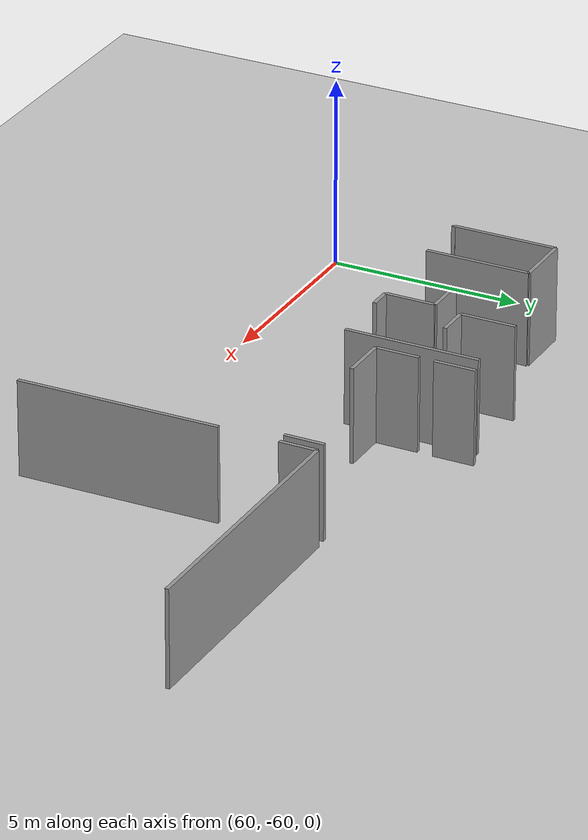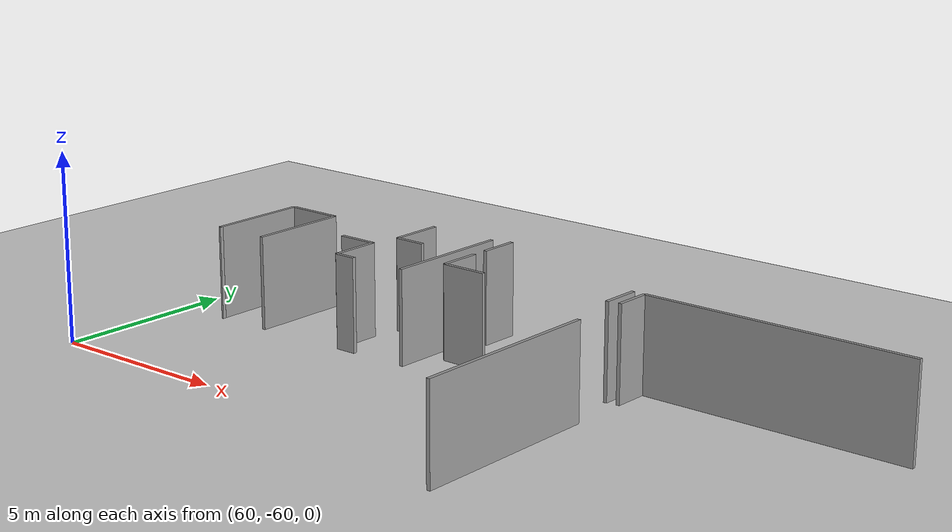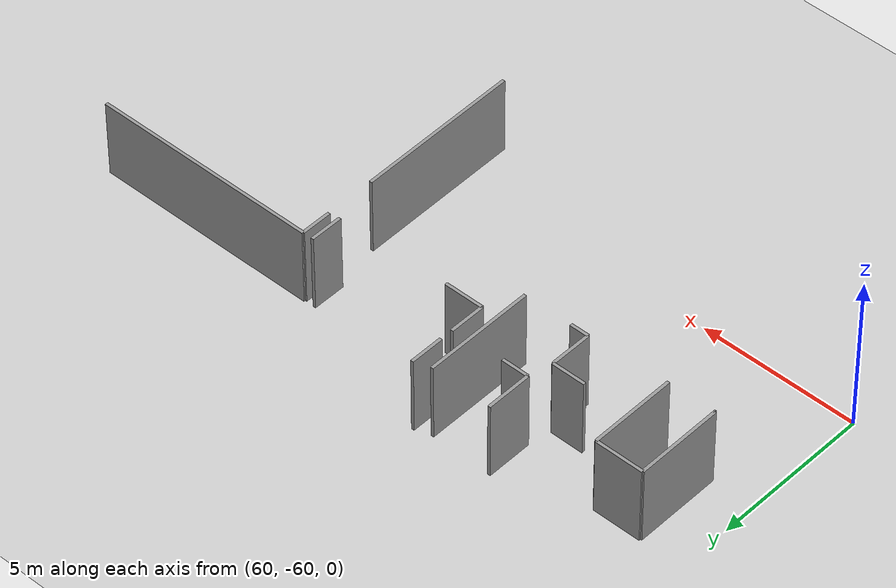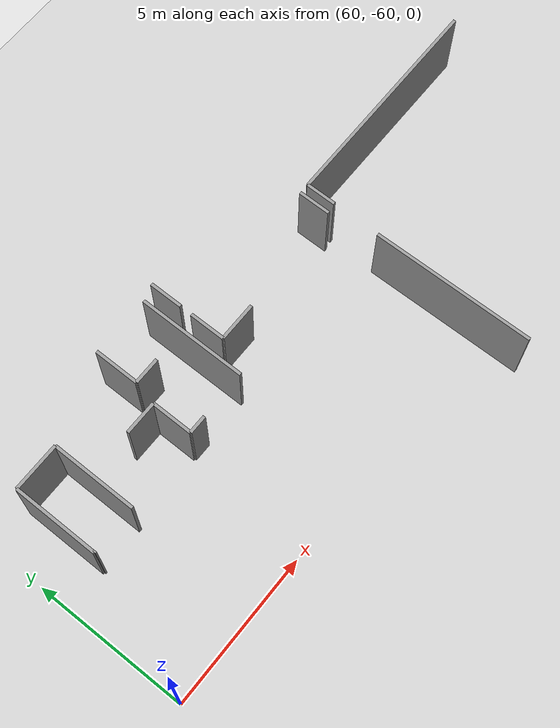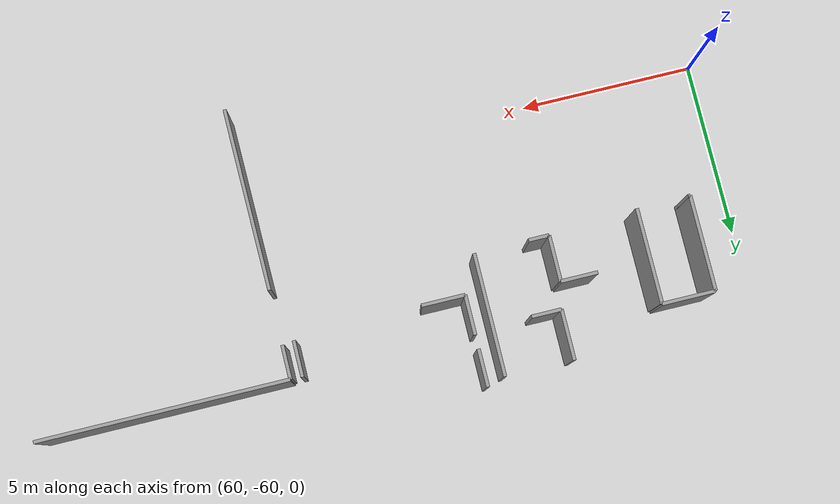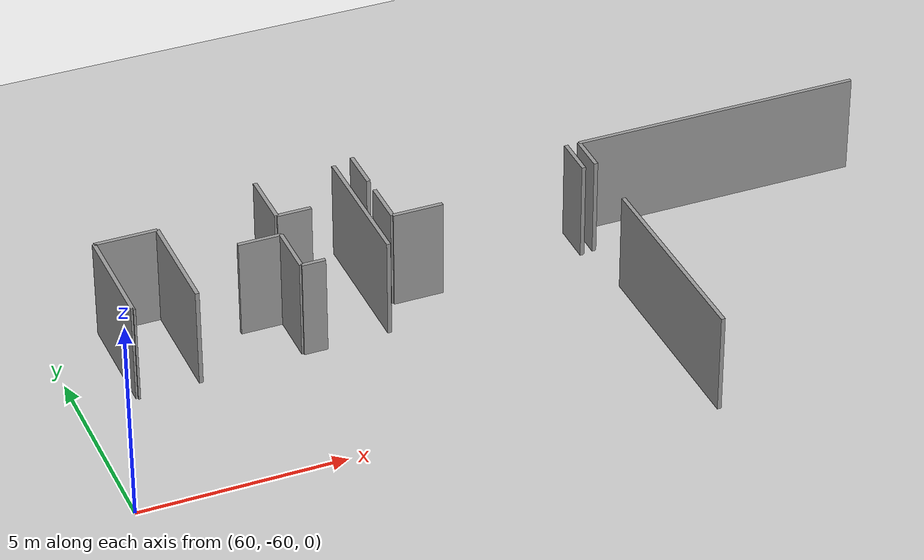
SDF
<sdf version="1.6">
 <world name="default">
  <model name="ground_plane">
   <static>1</static>
   <link name="link">
    <collision name="collision">
     <geometry><plane><normal>0 0 1</normal><size>100 100</size></plane></geometry>
     <surface><friction><ode><mu>100</mu><mu2>50</mu2></ode></friction></surface>
    </collision>
    <visual name="visual">
     <cast_shadows>0</cast_shadows>
     <geometry><plane><normal>0 0 1</normal><size>100 100</size></plane></geometry>
     <material>
      <script><uri>file://media/materials/scripts/gazebo.material</uri><name>Gazebo/Grey</name></script>
     </material>
    </visual>
   </link>
  </model>
  <model name="50023964">
   <static>1</static>
   <link name="Wall_48">
    <collision name="Wall_48_Collision">
     <geometry><box><size>2.73170112096 0.1 2.5</size></box></geometry>
     <pose>1.36585056048 0 1.25 0 0 0</pose>
    </collision>
    <visual name="Wall_48_Visual">
     <pose>1.36585056048 0 1.25 0 0 0</pose>
     <geometry><box><size>2.73170112096 0.1 2.5</size></box></geometry>
     <material>
      <script><uri>file://media/materials/scripts/gazebo.material</uri><name>Gazebo/Grey</name></script>
      <ambient>1 1 1 1</ambient>
     </material>
    </visual>
    <pose>143.644342828 -130.60391858 0 0 0 1.57079632679</pose>
   </link>
   <link name="Wall_49">
    <collision name="Wall_49_Collision">
     <geometry><box><size>1.52602330825 0.1 2.5</size></box></geometry>
     <pose>0.763011654123 0 1.25 0 0 0</pose>
    </collision>
    <visual name="Wall_49_Visual">
     <pose>0.763011654123 0 1.25 0 0 0</pose>
     <geometry><box><size>1.52602330825 0.1 2.5</size></box></geometry>
     <material>
      <script><uri>file://media/materials/scripts/gazebo.material</uri><name>Gazebo/Grey</name></script>
      <ambient>1 1 1 1</ambient>
     </material>
    </visual>
    <pose>143.644342828 -127.872217459 0 0 0 0.0</pose>
   </link>
   <link name="Wall_50">
    <collision name="Wall_50_Collision">
     <geometry><box><size>2.73170112096 0.1 2.5</size></box></geometry>
     <pose>1.36585056048 0 1.25 0 0 0</pose>
    </collision>
    <visual name="Wall_50_Visual">
     <pose>1.36585056048 0 1.25 0 0 0</pose>
     <geometry><box><size>2.73170112096 0.1 2.5</size></box></geometry>
     <material>
      <script><uri>file://media/materials/scripts/gazebo.material</uri><name>Gazebo/Grey</name></script>
      <ambient>1 1 1 1</ambient>
     </material>
    </visual>
    <pose>145.170366136 -127.872217459 0 0 0 -1.57079632679</pose>
   </link>
   <link name="Wall_51">
    <collision name="Wall_51_Collision">
     <geometry><box><size>0.0530945349465 0.1 2.5</size></box></geometry>
     <pose>0.0265472674732 0 1.25 0 0 0</pose>
    </collision>
    <visual name="Wall_51_Visual">
     <pose>0.0265472674732 0 1.25 0 0 0</pose>
     <geometry><box><size>0.0530945349465 0.1 2.5</size></box></geometry>
     <material>
      <script><uri>file://media/materials/scripts/gazebo.material</uri><name>Gazebo/Grey</name></script>
      <ambient>1 1 1 1</ambient>
     </material>
    </visual>
    <pose>143.697437363 -130.60391858 0 0 0 3.14159265359</pose>
   </link>
   <link name="Wall_56">
    <collision name="Wall_56_Collision">
     <geometry><box><size>0.582261598552 0.1 2.5</size></box></geometry>
     <pose>0.291130799276 0 1.25 0 0 0</pose>
    </collision>
    <visual name="Wall_56_Visual">
     <pose>0.291130799276 0 1.25 0 0 0</pose>
     <geometry><box><size>0.582261598552 0.1 2.5</size></box></geometry>
     <material>
      <script><uri>file://media/materials/scripts/gazebo.material</uri><name>Gazebo/Grey</name></script>
      <ambient>1 1 1 1</ambient>
     </material>
    </visual>
    <pose>147.722968467 -130.456066813 0 0 0 0.0</pose>
   </link>
   <link name="Wall_57">
    <collision name="Wall_57_Collision">
     <geometry><box><size>3.49585595885 0.1 2.5</size></box></geometry>
     <pose>1.74792797942 0 1.25 0 0 0</pose>
    </collision>
    <visual name="Wall_57_Visual">
     <pose>1.74792797942 0 1.25 0 0 0</pose>
     <geometry><box><size>3.49585595885 0.1 2.5</size></box></geometry>
     <material>
      <script><uri>file://media/materials/scripts/gazebo.material</uri><name>Gazebo/Grey</name></script>
      <ambient>1 1 1 1</ambient>
     </material>
    </visual>
    <pose>149.856657458 -130.456066813 0 0 0 1.57079632679</pose>
   </link>
   <link name="Wall_60">
    <collision name="Wall_60_Collision">
     <geometry><box><size>0.850020640818 0.1 2.5</size></box></geometry>
     <pose>0.425010320409 0 1.25 0 0 0</pose>
    </collision>
    <visual name="Wall_60_Visual">
     <pose>0.425010320409 0 1.25 0 0 0</pose>
     <geometry><box><size>0.850020640818 0.1 2.5</size></box></geometry>
     <material>
      <script><uri>file://media/materials/scripts/gazebo.material</uri><name>Gazebo/Grey</name></script>
      <ambient>1 1 1 1</ambient>
     </material>
    </visual>
    <pose>148.748785367 -128.383347623 0 0 0 3.14159265359</pose>
   </link>
   <link name="Wall_61">
    <collision name="Wall_61_Collision">
     <geometry><box><size>1.44218983202 0.1 2.5</size></box></geometry>
     <pose>0.721094916008 0 1.25 0 0 0</pose>
    </collision>
    <visual name="Wall_61_Visual">
     <pose>0.721094916008 0 1.25 0 0 0</pose>
     <geometry><box><size>1.44218983202 0.1 2.5</size></box></geometry>
     <material>
      <script><uri>file://media/materials/scripts/gazebo.material</uri><name>Gazebo/Grey</name></script>
      <ambient>1 1 1 1</ambient>
     </material>
    </visual>
    <pose>147.898764726 -128.383347623 0 0 0 1.57079632679</pose>
   </link>
   <link name="Wall_64">
    <collision name="Wall_64_Collision">
     <geometry><box><size>1.06011241307 0.1 2.5</size></box></geometry>
     <pose>0.530056206535 0 1.25 0 0 0</pose>
    </collision>
    <visual name="Wall_64_Visual">
     <pose>0.530056206535 0 1.25 0 0 0</pose>
     <geometry><box><size>1.06011241307 0.1 2.5</size></box></geometry>
     <material>
      <script><uri>file://media/materials/scripts/gazebo.material</uri><name>Gazebo/Grey</name></script>
      <ambient>1 1 1 1</ambient>
     </material>
    </visual>
    <pose>146.666666667 -129.137848909 0 0 0 0.0</pose>
   </link>
   <link name="Wall_65">
    <collision name="Wall_65_Collision">
     <geometry><box><size>1.31822341124 0.1 2.5</size></box></geometry>
     <pose>0.659111705622 0 1.25 0 0 0</pose>
    </collision>
    <visual name="Wall_65_Visual">
     <pose>0.659111705622 0 1.25 0 0 0</pose>
     <geometry><box><size>1.31822341124 0.1 2.5</size></box></geometry>
     <material>
      <script><uri>file://media/materials/scripts/gazebo.material</uri><name>Gazebo/Grey</name></script>
      <ambient>1 1 1 1</ambient>
     </material>
    </visual>
    <pose>147.72677908 -129.137848909 0 0 0 -1.57368704913</pose>
   </link>
   <link name="Wall_71">
    <collision name="Wall_71_Collision">
     <geometry><box><size>1.24530818329 0.1 2.5</size></box></geometry>
     <pose>0.622654091645 0 1.25 0 0 0</pose>
    </collision>
    <visual name="Wall_71_Visual">
     <pose>0.622654091645 0 1.25 0 0 0</pose>
     <geometry><box><size>1.24530818329 0.1 2.5</size></box></geometry>
     <material>
      <script><uri>file://media/materials/scripts/gazebo.material</uri><name>Gazebo/Grey</name></script>
      <ambient>1 1 1 1</ambient>
     </material>
    </visual>
    <pose>151.621987234 -129.39900289 0 0 0 3.14159265359</pose>
   </link>
   <link name="Wall_72">
    <collision name="Wall_72_Collision">
     <geometry><box><size>1.13581658252 0.1 2.5</size></box></geometry>
     <pose>0.567908291258 0 1.25 0 0 0</pose>
    </collision>
    <visual name="Wall_72_Visual">
     <pose>0.567908291258 0 1.25 0 0 0</pose>
     <geometry><box><size>1.13581658252 0.1 2.5</size></box></geometry>
     <material>
      <script><uri>file://media/materials/scripts/gazebo.material</uri><name>Gazebo/Grey</name></script>
      <ambient>1 1 1 1</ambient>
     </material>
    </visual>
    <pose>150.376679051 -129.39900289 0 0 0 1.57079632679</pose>
   </link>
   <link name="Wall_73">
    <collision name="Wall_73_Collision">
     <geometry><box><size>1.03547045188 0.1 2.5</size></box></geometry>
     <pose>0.517735225938 0 1.25 0 0 0</pose>
    </collision>
    <visual name="Wall_73_Visual">
     <pose>0.517735225938 0 1.25 0 0 0</pose>
     <geometry><box><size>1.03547045188 0.1 2.5</size></box></geometry>
     <material>
      <script><uri>file://media/materials/scripts/gazebo.material</uri><name>Gazebo/Grey</name></script>
      <ambient>1 1 1 1</ambient>
     </material>
    </visual>
    <pose>155.254263123 -128.263186307 0 0 0 -1.57079632679</pose>
   </link>
   <link name="Wall_80">
    <collision name="Wall_80_Collision">
     <geometry><box><size>7.20154964911 0.1 2.5</size></box></geometry>
     <pose>3.60077482455 0 1.25 0 0 0</pose>
    </collision>
    <visual name="Wall_80_Visual">
     <pose>3.60077482455 0 1.25 0 0 0</pose>
     <geometry><box><size>7.20154964911 0.1 2.5</size></box></geometry>
     <material>
      <script><uri>file://media/materials/scripts/gazebo.material</uri><name>Gazebo/Grey</name></script>
      <ambient>1 1 1 1</ambient>
     </material>
    </visual>
    <pose>162.789876473 -128.279698962 0 0 0 3.14159265359</pose>
   </link>
   <link name="Wall_81">
    <collision name="Wall_81_Collision">
     <geometry><box><size>0.968911752564 0.1 2.5</size></box></geometry>
     <pose>0.484455876282 0 1.25 0 0 0</pose>
    </collision>
    <visual name="Wall_81_Visual">
     <pose>0.484455876282 0 1.25 0 0 0</pose>
     <geometry><box><size>0.968911752564 0.1 2.5</size></box></geometry>
     <material>
      <script><uri>file://media/materials/scripts/gazebo.material</uri><name>Gazebo/Grey</name></script>
      <ambient>1 1 1 1</ambient>
     </material>
    </visual>
    <pose>155.588326824 -128.279698962 0 0 0 -1.57079632679</pose>
   </link>
   <link name="Wall_82">
    <collision name="Wall_82_Collision">
     <geometry><box><size>5.21961918991 0.1 2.5</size></box></geometry>
     <pose>2.60980959495 0 1.25 0 0 0</pose>
    </collision>
    <visual name="Wall_82_Visual">
     <pose>2.60980959495 0 1.25 0 0 0</pose>
     <geometry><box><size>5.21961918991 0.1 2.5</size></box></geometry>
     <material>
      <script><uri>file://media/materials/scripts/gazebo.material</uri><name>Gazebo/Grey</name></script>
      <ambient>1 1 1 1</ambient>
     </material>
    </visual>
    <pose>155.588326824 -130.809183576 0 0 0 -1.55921251786</pose>
   </link>
   <link name="Wall_98">
    <collision name="Wall_98_Collision">
     <geometry><box><size>1.07357657743 0.1 2.5</size></box></geometry>
     <pose>0.536788288717 0 1.25 0 0 0</pose>
    </collision>
    <visual name="Wall_98_Visual">
     <pose>0.536788288717 0 1.25 0 0 0</pose>
     <geometry><box><size>1.07357657743 0.1 2.5</size></box></geometry>
     <material>
      <script><uri>file://media/materials/scripts/gazebo.material</uri><name>Gazebo/Grey</name></script>
      <ambient>1 1 1 1</ambient>
     </material>
    </visual>
    <pose>150.382013909 -127.869168969 0 0 0 1.57079632679</pose>
   </link>
   <pose>-82.25 74.5341192722 0 0 0 0</pose>
  </model>
 </world>
</sdf>
